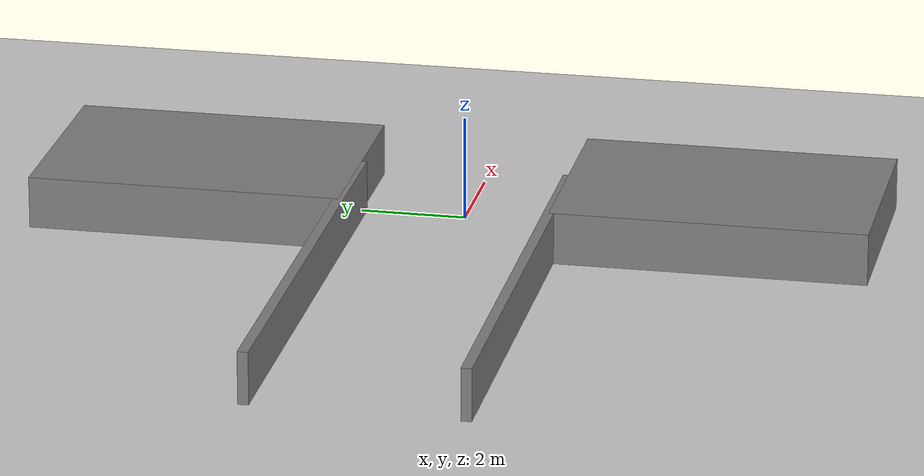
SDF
<?xml version="1.0" ?>
<sdf version="1.7">
  <world name="t_intersection">
    <physics type="ode">
      <max_step_size>0.001</max_step_size>
      <real_time_factor>1.0</real_time_factor>
    </physics>

    <!-- Ground plane -->
    <include>
      <uri>model://ground_plane</uri>
    </include>

    <!-- Sun -->
    <include>
      <uri>model://sun</uri>
    </include>

    <!-- T-intersection walls -->
    <!-- Horizontal corridor -->
    <model name="wall_h_left">
      <static>true</static>
      <link name="link">
        <pose>-5 2 0.5 0 0 0</pose>
        <collision name="collision">
          <geometry>
            <box>
              <size>10 0.2 1</size>
            </box>
          </geometry>
        </collision>
        <visual name="visual">
          <geometry>
            <box>
              <size>10 0.2 1</size>
            </box>
          </geometry>
          <material>
            <ambient>0.5 0.5 0.5 1</ambient>
          </material>
        </visual>
      </link>
    </model>

    <model name="wall_h_right">
      <static>true</static>
      <link name="link">
        <pose>-5 -2 0.5 0 0 0</pose>
        <collision name="collision">
          <geometry>
            <box>
              <size>10 0.2 1</size>
            </box>
          </geometry>
        </collision>
        <visual name="visual">
          <geometry>
            <box>
              <size>10 0.2 1</size>
            </box>
          </geometry>
          <material>
            <ambient>0.5 0.5 0.5 1</ambient>
          </material>
        </visual>
      </link>
    </model>

    <!-- Vertical corridor (top) -->
    <model name="wall_v_top">
      <static>true</static>
      <link name="link">
        <pose>0 -5 0.5 0 0 0</pose>
        <collision name="collision">
          <geometry>
            <box>
              <size>4.2 6 1</size>
            </box>
          </geometry>
        </collision>
        <visual name="visual">
          <geometry>
            <box>
              <size>4.2 6 1</size>
            </box>
          </geometry>
          <material>
            <ambient>0.5 0.5 0.5 1</ambient>
          </material>
        </visual>
      </link>
    </model>

    <!-- Vertical corridor (bottom) -->
    <model name="wall_v_bottom">
      <static>true</static>
      <link name="link">
        <pose>0 5 0.5 0 0 0</pose>
        <collision name="collision">
          <geometry>
            <box>
              <size>4.2 6 1</size>
            </box>
          </geometry>
        </collision>
        <visual name="visual">
          <geometry>
            <box>
              <size>4.2 6 1</size>
            </box>
          </geometry>
          <material>
            <ambient>0.5 0.5 0.5 1</ambient>
          </material>
        </visual>
      </link>
    </model>
  </world>
</sdf>
